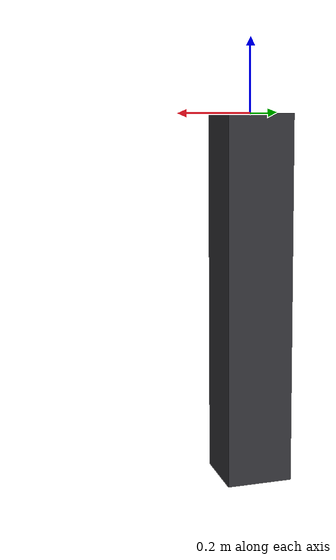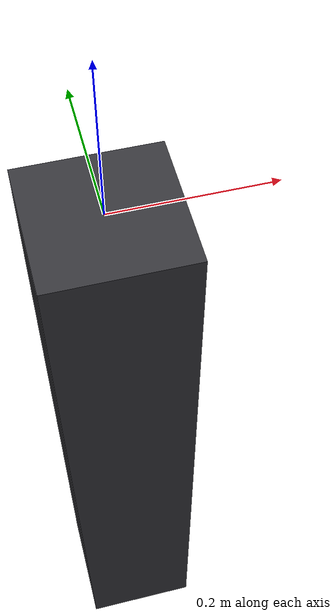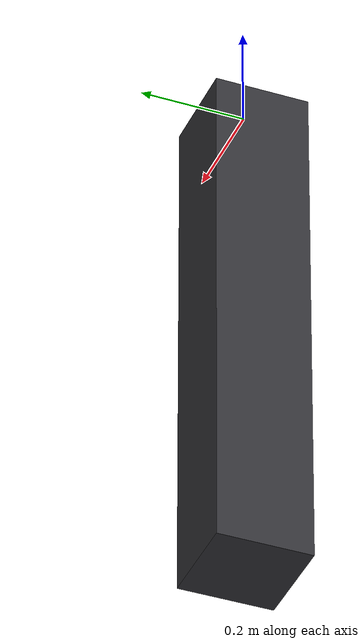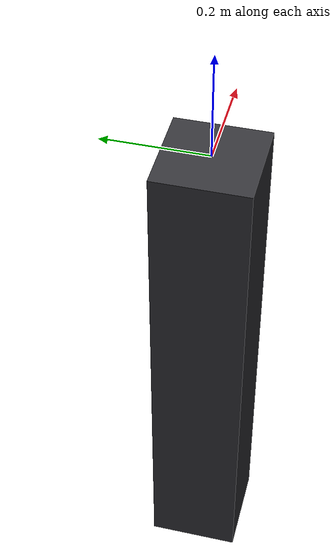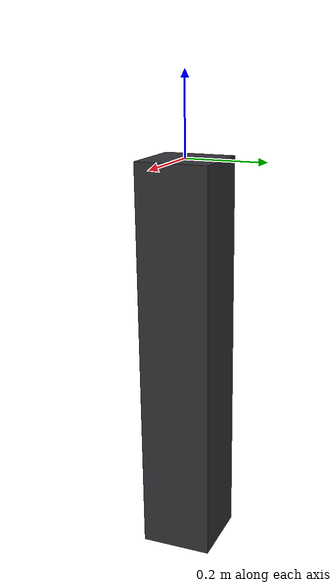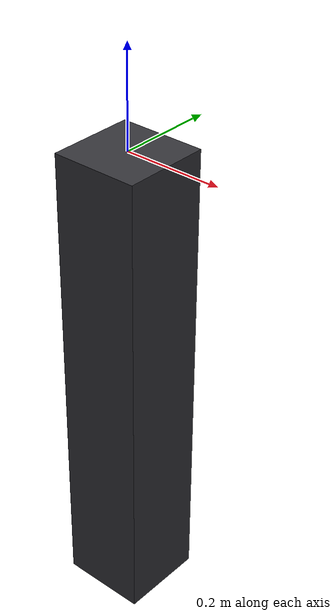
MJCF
<mujoco model="pedestal">
  <worldbody>
    <body name="column">
      <geom name="column_geom" type="box" size="0.09 0.09 0.5" pos="0 0 -0.5"
            contype="0" conaffinity="0" rgba="0.2 0.2 0.22 1"/>
      <site name="column_top" pos="0 0 0" size="0.001" rgba="0 0 0 0"/>
    </body>
  </worldbody>
</mujoco>
